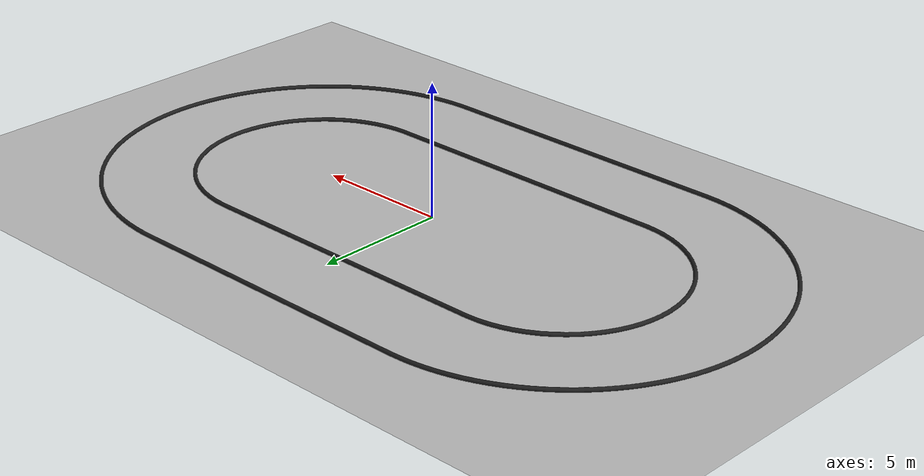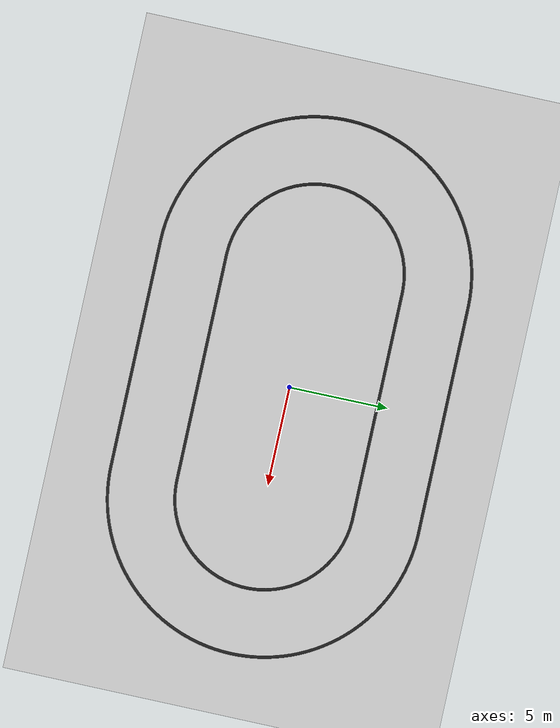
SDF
<?xml version="1.0"?>
<sdf version="1.6">
    <world name="default">
        <scene>
            <sky>
                <clouds>
                    <speed>12</speed>
                </clouds>
            </sky>
            <ambient>1.0 1.0 1.0 1.0</ambient>
            <shadows>true</shadows>
        </scene>
        <!-- A global light source -->
        <include>
            <uri>model://urdf/models/sun</uri>
        </include>
        <include>
            <name>track</name>
            <uri>model://urdf/models/track</uri>
            <pose>0 0 0.0762 0 0 0</pose>
        </include>
        <include>
            <name>blended_plane</name>
            <uri>model://urdf/models/ground_plane</uri>
            <pose>0 0 0 0 0 0</pose>
        </include>
        <!-- A ground plane -->
    </world>
</sdf>

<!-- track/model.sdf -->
<sdf version="1.5">
  <model name="track">
    <static>true</static>
    <link name="link">
      <collision name="collision">
        <geometry>
          <mesh>
            <uri>model://urdf/cad/autoRallyTrack.dae</uri>
            <scale>1.0 1.0 1.0</scale>
          </mesh>
        </geometry>
        <surface>
          <friction>
            <ode>
              <mu>100</mu>
              <mu2>50</mu2>
            </ode>
          </friction>
        </surface>
      </collision>
      <visual name="visual">
        <cast_shadows>false</cast_shadows>
        <geometry>
          <mesh>
            <uri>model://urdf/cad/autoRallyTrack.dae</uri>
            <scale>1.0 1.0 1.0</scale>
          </mesh>
        </geometry>
        <material>
          <script>
            <uri>model://urdf/gazebo.material</uri>
            <name>Gazebo/Black</name>
          </script>
        </material>
      </visual>
    </link>
  </model>
</sdf>
